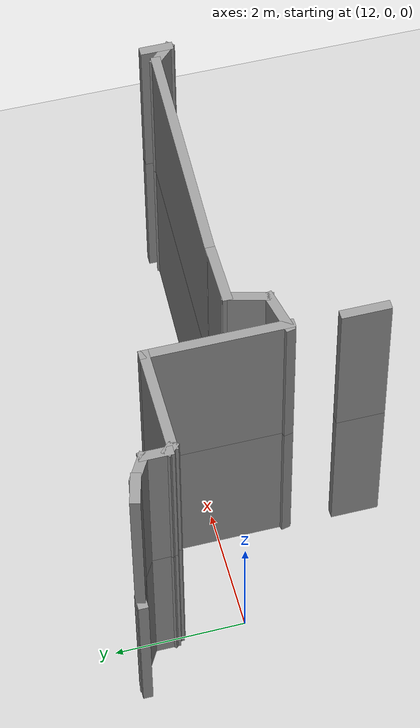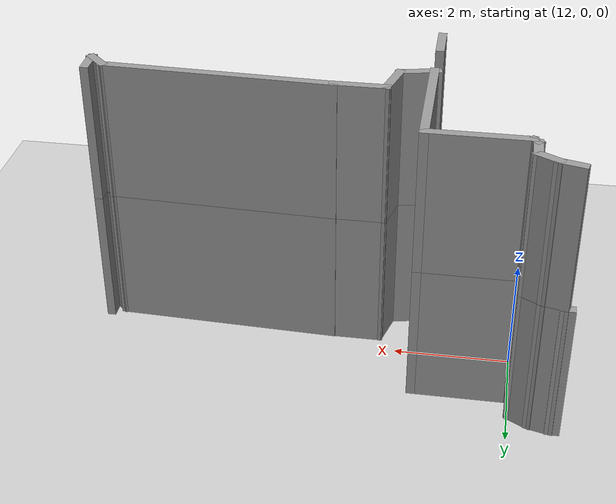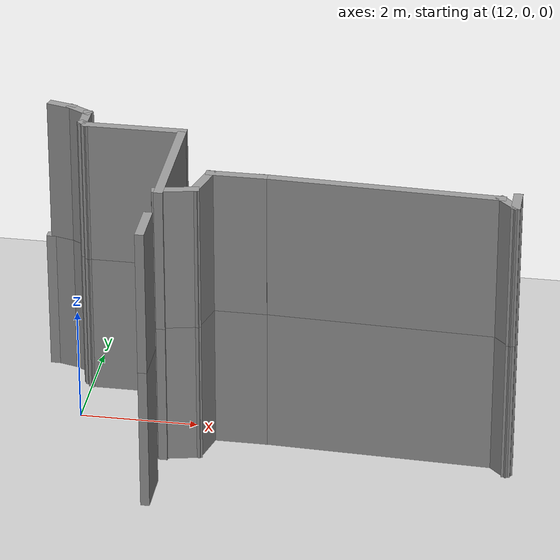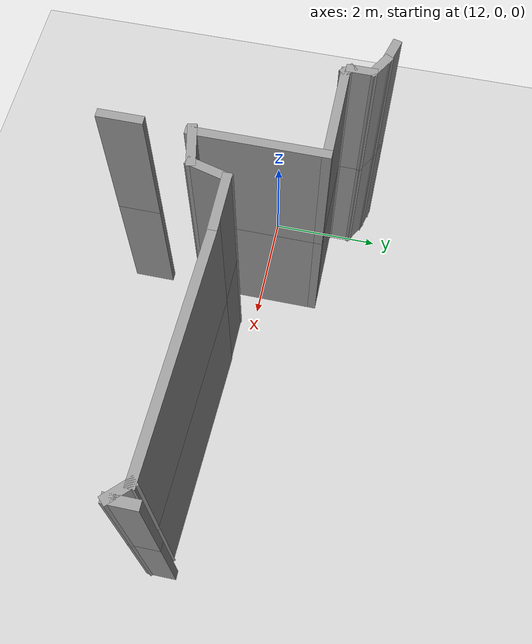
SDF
<sdf version="1.7">
 <world name="default">
  <model name="ground_plane">
   <static>1</static>
   <link name="link">
    <collision name="collision">
     <geometry><plane><normal>0 0 1</normal><size>100 100</size></plane></geometry>
     <surface>
      <contact><collide_bitmask>65535</collide_bitmask></contact>
      <friction><ode><mu>100</mu><mu2>50</mu2></ode></friction>
     </surface>
    </collision>
    <visual name="visual">
     <cast_shadows>0</cast_shadows>
     <geometry><plane><normal>0 0 1</normal><size>100 100</size></plane></geometry>
     <material>
      <script><uri>file://media/materials/scripts/gazebo.material</uri><name>Gazebo/Grey</name></script>
     </material>
    </visual>
   </link>
  </model>
  <model name="EnvDC01">
   <link name="Wall_142">
    <pose>7.0376 4.07108 0 0 0 -1.5708</pose>
    <visual name="Wall_142_Visual">
     <pose>0 0 1.25 0 -0 0</pose>
     <geometry><box><size>0.75 0.15 2.5</size></box></geometry>
     <material>
      <script><uri>file://media/materials/scripts/gazebo.material</uri><name>Gazebo/Grey</name></script>
      <ambient>1 1 1 1</ambient>
      <shader type="pixel"/>
     </material>
     <meta><layer>0</layer></meta>
    </visual>
    <collision name="Wall_142_Collision">
     <pose>0 0 1.25 0 -0 0</pose>
     <geometry><box><size>0.75 0.15 2.5</size></box></geometry>
     <surface>
      <friction>
       <ode><mu>1</mu><mu2>1</mu2><fdir1>0 0 0</fdir1><slip1>0</slip1><slip2>0</slip2></ode>
       <torsional>
        <coefficient>1</coefficient>
        <patch_radius>0</patch_radius>
        <surface_radius>0</surface_radius>
        <use_patch_radius>1</use_patch_radius>
        <ode><slip>0</slip></ode>
       </torsional>
      </friction>
      <bounce><restitution_coefficient>0</restitution_coefficient><threshold>1e+06</threshold></bounce>
      <contact>
       <collide_without_contact>0</collide_without_contact>
       <collide_without_contact_bitmask>1</collide_without_contact_bitmask>
       <collide_bitmask>1</collide_bitmask>
       <ode>
        <soft_cfm>0</soft_cfm>
        <soft_erp>0.2</soft_erp>
        <kp>1e+13</kp>
        <kd>1</kd>
        <max_vel>0.01</max_vel>
        <min_depth>0</min_depth>
       </ode>
       <bullet>
        <split_impulse>1</split_impulse>
        <split_impulse_penetration_threshold>-0.01</split_impulse_penetration_threshold>
        <soft_cfm>0</soft_cfm>
        <soft_erp>0.2</soft_erp>
        <kp>1e+13</kp>
        <kd>1</kd>
       </bullet>
      </contact>
     </surface>
    </collision>
   </link>
   <link name="Wall_274">
    <pose>12.7164 5.69748 2.5 0 0 -1.5708</pose>
    <visual name="Wall_274_Visual">
     <pose>0 0 1.25 0 -0 0</pose>
     <geometry><box><size>0.519297 0.15 2.5</size></box></geometry>
     <material>
      <script><uri>file://media/materials/scripts/gazebo.material</uri><name>Gazebo/Grey</name></script>
      <ambient>1 1 1 1</ambient>
      <shader type="pixel"/>
     </material>
     <meta><layer>1</layer></meta>
    </visual>
    <collision name="Wall_274_Collision">
     <pose>0 0 1.25 0 -0 0</pose>
     <geometry><box><size>0.519297 0.15 2.5</size></box></geometry>
     <surface>
      <friction>
       <ode><mu>1</mu><mu2>1</mu2><fdir1>0 0 0</fdir1><slip1>0</slip1><slip2>0</slip2></ode>
       <torsional>
        <coefficient>1</coefficient>
        <patch_radius>0</patch_radius>
        <surface_radius>0</surface_radius>
        <use_patch_radius>1</use_patch_radius>
        <ode><slip>0</slip></ode>
       </torsional>
      </friction>
      <bounce><restitution_coefficient>0</restitution_coefficient><threshold>1e+06</threshold></bounce>
      <contact>
       <collide_without_contact>0</collide_without_contact>
       <collide_without_contact_bitmask>1</collide_without_contact_bitmask>
       <collide_bitmask>1</collide_bitmask>
       <ode>
        <soft_cfm>0</soft_cfm>
        <soft_erp>0.2</soft_erp>
        <kp>1e+13</kp>
        <kd>1</kd>
        <max_vel>0.01</max_vel>
        <min_depth>0</min_depth>
       </ode>
       <bullet>
        <split_impulse>1</split_impulse>
        <split_impulse_penetration_threshold>-0.01</split_impulse_penetration_threshold>
        <soft_cfm>0</soft_cfm>
        <soft_erp>0.2</soft_erp>
        <kp>1e+13</kp>
        <kd>1</kd>
       </bullet>
      </contact>
     </surface>
    </collision>
   </link>
   <link name="Wall_275">
    <pose>12.5926 5.63658 2.5 0 -0 2.35619</pose>
    <visual name="Wall_275_Visual">
     <pose>0 0 1.25 0 -0 0</pose>
     <geometry><box><size>0.5 0.15 2.5</size></box></geometry>
     <material>
      <script><uri>file://media/materials/scripts/gazebo.material</uri><name>Gazebo/Grey</name></script>
      <ambient>1 1 1 1</ambient>
      <shader type="pixel"/>
     </material>
     <meta><layer>1</layer></meta>
    </visual>
    <collision name="Wall_275_Collision">
     <pose>0 0 1.25 0 -0 0</pose>
     <geometry><box><size>0.5 0.15 2.5</size></box></geometry>
     <surface>
      <friction>
       <ode><mu>1</mu><mu2>1</mu2><fdir1>0 0 0</fdir1><slip1>0</slip1><slip2>0</slip2></ode>
       <torsional>
        <coefficient>1</coefficient>
        <patch_radius>0</patch_radius>
        <surface_radius>0</surface_radius>
        <use_patch_radius>1</use_patch_radius>
        <ode><slip>0</slip></ode>
       </torsional>
      </friction>
      <bounce><restitution_coefficient>0</restitution_coefficient><threshold>1e+06</threshold></bounce>
      <contact>
       <collide_without_contact>0</collide_without_contact>
       <collide_without_contact_bitmask>1</collide_without_contact_bitmask>
       <collide_bitmask>1</collide_bitmask>
       <ode>
        <soft_cfm>0</soft_cfm>
        <soft_erp>0.2</soft_erp>
        <kp>1e+13</kp>
        <kd>1</kd>
        <max_vel>0.01</max_vel>
        <min_depth>0</min_depth>
       </ode>
       <bullet>
        <split_impulse>1</split_impulse>
        <split_impulse_penetration_threshold>-0.01</split_impulse_penetration_threshold>
        <soft_cfm>0</soft_cfm>
        <soft_erp>0.2</soft_erp>
        <kp>1e+13</kp>
        <kd>1</kd>
       </bullet>
      </contact>
     </surface>
    </collision>
   </link>
   <link name="Wall_276">
    <pose>10.547 5.83328 2.5 0 -0 3.10365</pose>
    <visual name="Wall_276_Visual">
     <pose>0 0 1.25 0 -0 0</pose>
     <geometry><box><size>3.99642 0.15 2.5</size></box></geometry>
     <material>
      <script><uri>file://media/materials/scripts/gazebo.material</uri><name>Gazebo/Grey</name></script>
      <ambient>1 1 1 1</ambient>
      <shader type="pixel"/>
     </material>
     <meta><layer>1</layer></meta>
    </visual>
    <collision name="Wall_276_Collision">
     <pose>0 0 1.25 0 -0 0</pose>
     <geometry><box><size>3.99642 0.15 2.5</size></box></geometry>
     <surface>
      <friction>
       <ode><mu>1</mu><mu2>1</mu2><fdir1>0 0 0</fdir1><slip1>0</slip1><slip2>0</slip2></ode>
       <torsional>
        <coefficient>1</coefficient>
        <patch_radius>0</patch_radius>
        <surface_radius>0</surface_radius>
        <use_patch_radius>1</use_patch_radius>
        <ode><slip>0</slip></ode>
       </torsional>
      </friction>
      <bounce><restitution_coefficient>0</restitution_coefficient><threshold>1e+06</threshold></bounce>
      <contact>
       <collide_without_contact>0</collide_without_contact>
       <collide_without_contact_bitmask>1</collide_without_contact_bitmask>
       <collide_bitmask>1</collide_bitmask>
       <ode>
        <soft_cfm>0</soft_cfm>
        <soft_erp>0.2</soft_erp>
        <kp>1e+13</kp>
        <kd>1</kd>
        <max_vel>0.01</max_vel>
        <min_depth>0</min_depth>
       </ode>
       <bullet>
        <split_impulse>1</split_impulse>
        <split_impulse_penetration_threshold>-0.01</split_impulse_penetration_threshold>
        <soft_cfm>0</soft_cfm>
        <soft_erp>0.2</soft_erp>
        <kp>1e+13</kp>
        <kd>1</kd>
       </bullet>
      </contact>
     </surface>
    </collision>
   </link>
   <link name="Wall_277">
    <pose>8.20021 5.89989 2.5 0 -0 3.14159</pose>
    <visual name="Wall_277_Visual">
     <pose>0 0 1.25 0 -0 0</pose>
     <geometry><box><size>1 0.15 2.5</size></box></geometry>
     <material>
      <script><uri>file://media/materials/scripts/gazebo.material</uri><name>Gazebo/Grey</name></script>
      <ambient>1 1 1 1</ambient>
      <shader type="pixel"/>
     </material>
     <meta><layer>1</layer></meta>
    </visual>
    <collision name="Wall_277_Collision">
     <pose>0 0 1.25 0 -0 0</pose>
     <geometry><box><size>1 0.15 2.5</size></box></geometry>
     <surface>
      <friction>
       <ode><mu>1</mu><mu2>1</mu2><fdir1>0 0 0</fdir1><slip1>0</slip1><slip2>0</slip2></ode>
       <torsional>
        <coefficient>1</coefficient>
        <patch_radius>0</patch_radius>
        <surface_radius>0</surface_radius>
        <use_patch_radius>1</use_patch_radius>
        <ode><slip>0</slip></ode>
       </torsional>
      </friction>
      <bounce><restitution_coefficient>0</restitution_coefficient><threshold>1e+06</threshold></bounce>
      <contact>
       <collide_without_contact>0</collide_without_contact>
       <collide_without_contact_bitmask>1</collide_without_contact_bitmask>
       <collide_bitmask>1</collide_bitmask>
       <ode>
        <soft_cfm>0</soft_cfm>
        <soft_erp>0.2</soft_erp>
        <kp>1e+13</kp>
        <kd>1</kd>
        <max_vel>0.01</max_vel>
        <min_depth>0</min_depth>
       </ode>
       <bullet>
        <split_impulse>1</split_impulse>
        <split_impulse_penetration_threshold>-0.01</split_impulse_penetration_threshold>
        <soft_cfm>0</soft_cfm>
        <soft_erp>0.2</soft_erp>
        <kp>1e+13</kp>
        <kd>1</kd>
       </bullet>
      </contact>
     </surface>
    </collision>
   </link>
   <link name="Wall_278">
    <pose>7.69756 5.61011 2.5 0 0 -1.8326</pose>
    <visual name="Wall_278_Visual">
     <pose>0 0 1.25 0 -0 0</pose>
     <geometry><box><size>0.75 0.15 2.5</size></box></geometry>
     <material>
      <script><uri>file://media/materials/scripts/gazebo.material</uri><name>Gazebo/Grey</name></script>
      <ambient>1 1 1 1</ambient>
      <shader type="pixel"/>
     </material>
     <meta><layer>1</layer></meta>
    </visual>
    <collision name="Wall_278_Collision">
     <pose>0 0 1.25 0 -0 0</pose>
     <geometry><box><size>0.75 0.15 2.5</size></box></geometry>
     <surface>
      <friction>
       <ode><mu>1</mu><mu2>1</mu2><fdir1>0 0 0</fdir1><slip1>0</slip1><slip2>0</slip2></ode>
       <torsional>
        <coefficient>1</coefficient>
        <patch_radius>0</patch_radius>
        <surface_radius>0</surface_radius>
        <use_patch_radius>1</use_patch_radius>
        <ode><slip>0</slip></ode>
       </torsional>
      </friction>
      <bounce><restitution_coefficient>0</restitution_coefficient><threshold>1e+06</threshold></bounce>
      <contact>
       <collide_without_contact>0</collide_without_contact>
       <collide_without_contact_bitmask>1</collide_without_contact_bitmask>
       <collide_bitmask>1</collide_bitmask>
       <ode>
        <soft_cfm>0</soft_cfm>
        <soft_erp>0.2</soft_erp>
        <kp>1e+13</kp>
        <kd>1</kd>
        <max_vel>0.01</max_vel>
        <min_depth>0</min_depth>
       </ode>
       <bullet>
        <split_impulse>1</split_impulse>
        <split_impulse_penetration_threshold>-0.01</split_impulse_penetration_threshold>
        <soft_cfm>0</soft_cfm>
        <soft_erp>0.2</soft_erp>
        <kp>1e+13</kp>
        <kd>1</kd>
       </bullet>
      </contact>
     </surface>
    </collision>
   </link>
   <link name="Wall_279">
    <pose>7.32083 5.25778 2.5 0 0 -2.93542</pose>
    <visual name="Wall_279_Visual">
     <pose>0 0 1.25 0 -0 0</pose>
     <geometry><box><size>0.761118 0.15 2.5</size></box></geometry>
     <material>
      <script><uri>file://media/materials/scripts/gazebo.material</uri><name>Gazebo/Grey</name></script>
      <ambient>1 1 1 1</ambient>
      <shader type="pixel"/>
     </material>
     <meta><layer>1</layer></meta>
    </visual>
    <collision name="Wall_279_Collision">
     <pose>0 0 1.25 0 -0 0</pose>
     <geometry><box><size>0.761118 0.15 2.5</size></box></geometry>
     <surface>
      <friction>
       <ode><mu>1</mu><mu2>1</mu2><fdir1>0 0 0</fdir1><slip1>0</slip1><slip2>0</slip2></ode>
       <torsional>
        <coefficient>1</coefficient>
        <patch_radius>0</patch_radius>
        <surface_radius>0</surface_radius>
        <use_patch_radius>1</use_patch_radius>
        <ode><slip>0</slip></ode>
       </torsional>
      </friction>
      <bounce><restitution_coefficient>0</restitution_coefficient><threshold>1e+06</threshold></bounce>
      <contact>
       <collide_without_contact>0</collide_without_contact>
       <collide_without_contact_bitmask>1</collide_without_contact_bitmask>
       <collide_bitmask>1</collide_bitmask>
       <ode>
        <soft_cfm>0</soft_cfm>
        <soft_erp>0.2</soft_erp>
        <kp>1e+13</kp>
        <kd>1</kd>
        <max_vel>0.01</max_vel>
        <min_depth>0</min_depth>
       </ode>
       <bullet>
        <split_impulse>1</split_impulse>
        <split_impulse_penetration_threshold>-0.01</split_impulse_penetration_threshold>
        <soft_cfm>0</soft_cfm>
        <soft_erp>0.2</soft_erp>
        <kp>1e+13</kp>
        <kd>1</kd>
       </bullet>
      </contact>
     </surface>
    </collision>
   </link>
   <link name="Wall_280">
    <pose>7.07114 6.22054 2.5 0 -0 1.5708</pose>
    <visual name="Wall_280_Visual">
     <pose>0 0 1.25 0 -0 0</pose>
     <geometry><box><size>2.25 0.15 2.5</size></box></geometry>
     <material>
      <script><uri>file://media/materials/scripts/gazebo.material</uri><name>Gazebo/Grey</name></script>
      <ambient>1 1 1 1</ambient>
      <shader type="pixel"/>
     </material>
     <meta><layer>1</layer></meta>
    </visual>
    <collision name="Wall_280_Collision">
     <pose>0 0 1.25 0 -0 0</pose>
     <geometry><box><size>2.25 0.15 2.5</size></box></geometry>
     <surface>
      <friction>
       <ode><mu>1</mu><mu2>1</mu2><fdir1>0 0 0</fdir1><slip1>0</slip1><slip2>0</slip2></ode>
       <torsional>
        <coefficient>1</coefficient>
        <patch_radius>0</patch_radius>
        <surface_radius>0</surface_radius>
        <use_patch_radius>1</use_patch_radius>
        <ode><slip>0</slip></ode>
       </torsional>
      </friction>
      <bounce><restitution_coefficient>0</restitution_coefficient><threshold>1e+06</threshold></bounce>
      <contact>
       <collide_without_contact>0</collide_without_contact>
       <collide_without_contact_bitmask>1</collide_without_contact_bitmask>
       <collide_bitmask>1</collide_bitmask>
       <ode>
        <soft_cfm>0</soft_cfm>
        <soft_erp>0.2</soft_erp>
        <kp>1e+13</kp>
        <kd>1</kd>
        <max_vel>0.01</max_vel>
        <min_depth>0</min_depth>
       </ode>
       <bullet>
        <split_impulse>1</split_impulse>
        <split_impulse_penetration_threshold>-0.01</split_impulse_penetration_threshold>
        <soft_cfm>0</soft_cfm>
        <soft_erp>0.2</soft_erp>
        <kp>1e+13</kp>
        <kd>1</kd>
       </bullet>
      </contact>
     </surface>
    </collision>
   </link>
   <link name="Wall_281">
    <pose>6.27114 7.27054 2.5 0 -0 3.14159</pose>
    <visual name="Wall_281_Visual">
     <pose>0 0 1.25 0 -0 0</pose>
     <geometry><box><size>1.75 0.15 2.5</size></box></geometry>
     <material>
      <script><uri>file://media/materials/scripts/gazebo.material</uri><name>Gazebo/Grey</name></script>
      <ambient>1 1 1 1</ambient>
      <shader type="pixel"/>
     </material>
     <meta><layer>1</layer></meta>
    </visual>
    <collision name="Wall_281_Collision">
     <pose>0 0 1.25 0 -0 0</pose>
     <geometry><box><size>1.75 0.15 2.5</size></box></geometry>
     <surface>
      <friction>
       <ode><mu>1</mu><mu2>1</mu2><fdir1>0 0 0</fdir1><slip1>0</slip1><slip2>0</slip2></ode>
       <torsional>
        <coefficient>1</coefficient>
        <patch_radius>0</patch_radius>
        <surface_radius>0</surface_radius>
        <use_patch_radius>1</use_patch_radius>
        <ode><slip>0</slip></ode>
       </torsional>
      </friction>
      <bounce><restitution_coefficient>0</restitution_coefficient><threshold>1e+06</threshold></bounce>
      <contact>
       <collide_without_contact>0</collide_without_contact>
       <collide_without_contact_bitmask>1</collide_without_contact_bitmask>
       <collide_bitmask>1</collide_bitmask>
       <ode>
        <soft_cfm>0</soft_cfm>
        <soft_erp>0.2</soft_erp>
        <kp>1e+13</kp>
        <kd>1</kd>
        <max_vel>0.01</max_vel>
        <min_depth>0</min_depth>
       </ode>
       <bullet>
        <split_impulse>1</split_impulse>
        <split_impulse_penetration_threshold>-0.01</split_impulse_penetration_threshold>
        <soft_cfm>0</soft_cfm>
        <soft_erp>0.2</soft_erp>
        <kp>1e+13</kp>
        <kd>1</kd>
       </bullet>
      </contact>
     </surface>
    </collision>
   </link>
   <link name="Wall_282">
    <pose>5.43578 7.3059 2.5 0 -0 2.35619</pose>
    <visual name="Wall_282_Visual">
     <pose>0 0 1.25 0 -0 0</pose>
     <geometry><box><size>0.25 0.15 2.5</size></box></geometry>
     <material>
      <script><uri>file://media/materials/scripts/gazebo.material</uri><name>Gazebo/Grey</name></script>
      <ambient>1 1 1 1</ambient>
      <shader type="pixel"/>
     </material>
     <meta><layer>1</layer></meta>
    </visual>
    <collision name="Wall_282_Collision">
     <pose>0 0 1.25 0 -0 0</pose>
     <geometry><box><size>0.25 0.15 2.5</size></box></geometry>
     <surface>
      <friction>
       <ode><mu>1</mu><mu2>1</mu2><fdir1>0 0 0</fdir1><slip1>0</slip1><slip2>0</slip2></ode>
       <torsional>
        <coefficient>1</coefficient>
        <patch_radius>0</patch_radius>
        <surface_radius>0</surface_radius>
        <use_patch_radius>1</use_patch_radius>
        <ode><slip>0</slip></ode>
       </torsional>
      </friction>
      <bounce><restitution_coefficient>0</restitution_coefficient><threshold>1e+06</threshold></bounce>
      <contact>
       <collide_without_contact>0</collide_without_contact>
       <collide_without_contact_bitmask>1</collide_without_contact_bitmask>
       <collide_bitmask>1</collide_bitmask>
       <ode>
        <soft_cfm>0</soft_cfm>
        <soft_erp>0.2</soft_erp>
        <kp>1e+13</kp>
        <kd>1</kd>
        <max_vel>0.01</max_vel>
        <min_depth>0</min_depth>
       </ode>
       <bullet>
        <split_impulse>1</split_impulse>
        <split_impulse_penetration_threshold>-0.01</split_impulse_penetration_threshold>
        <soft_cfm>0</soft_cfm>
        <soft_erp>0.2</soft_erp>
        <kp>1e+13</kp>
        <kd>1</kd>
       </bullet>
      </contact>
     </surface>
    </collision>
   </link>
   <link name="Wall_283">
    <pose>5.40043 7.51625 2.5 0 -0 1.5708</pose>
    <visual name="Wall_283_Visual">
     <pose>0 0 1.25 0 -0 0</pose>
     <geometry><box><size>0.5 0.15 2.5</size></box></geometry>
     <material>
      <script><uri>file://media/materials/scripts/gazebo.material</uri><name>Gazebo/Grey</name></script>
      <ambient>1 1 1 1</ambient>
      <shader type="pixel"/>
     </material>
     <meta><layer>1</layer></meta>
    </visual>
    <collision name="Wall_283_Collision">
     <pose>0 0 1.25 0 -0 0</pose>
     <geometry><box><size>0.5 0.15 2.5</size></box></geometry>
     <surface>
      <friction>
       <ode><mu>1</mu><mu2>1</mu2><fdir1>0 0 0</fdir1><slip1>0</slip1><slip2>0</slip2></ode>
       <torsional>
        <coefficient>1</coefficient>
        <patch_radius>0</patch_radius>
        <surface_radius>0</surface_radius>
        <use_patch_radius>1</use_patch_radius>
        <ode><slip>0</slip></ode>
       </torsional>
      </friction>
      <bounce><restitution_coefficient>0</restitution_coefficient><threshold>1e+06</threshold></bounce>
      <contact>
       <collide_without_contact>0</collide_without_contact>
       <collide_without_contact_bitmask>1</collide_without_contact_bitmask>
       <collide_bitmask>1</collide_bitmask>
       <ode>
        <soft_cfm>0</soft_cfm>
        <soft_erp>0.2</soft_erp>
        <kp>1e+13</kp>
        <kd>1</kd>
        <max_vel>0.01</max_vel>
        <min_depth>0</min_depth>
       </ode>
       <bullet>
        <split_impulse>1</split_impulse>
        <split_impulse_penetration_threshold>-0.01</split_impulse_penetration_threshold>
        <soft_cfm>0</soft_cfm>
        <soft_erp>0.2</soft_erp>
        <kp>1e+13</kp>
        <kd>1</kd>
       </bullet>
      </contact>
     </surface>
    </collision>
   </link>
   <link name="Wall_284">
    <pose>5.24887 7.77875 2.5 0 -0 2.61799</pose>
    <visual name="Wall_284_Visual">
     <pose>0 0 1.25 0 -0 0</pose>
     <geometry><box><size>0.5 0.15 2.5</size></box></geometry>
     <material>
      <script><uri>file://media/materials/scripts/gazebo.material</uri><name>Gazebo/Grey</name></script>
      <ambient>1 1 1 1</ambient>
      <shader type="pixel"/>
     </material>
     <meta><layer>1</layer></meta>
    </visual>
    <collision name="Wall_284_Collision">
     <pose>0 0 1.25 0 -0 0</pose>
     <geometry><box><size>0.5 0.15 2.5</size></box></geometry>
     <surface>
      <friction>
       <ode><mu>1</mu><mu2>1</mu2><fdir1>0 0 0</fdir1><slip1>0</slip1><slip2>0</slip2></ode>
       <torsional>
        <coefficient>1</coefficient>
        <patch_radius>0</patch_radius>
        <surface_radius>0</surface_radius>
        <use_patch_radius>1</use_patch_radius>
        <ode><slip>0</slip></ode>
       </torsional>
      </friction>
      <bounce><restitution_coefficient>0</restitution_coefficient><threshold>1e+06</threshold></bounce>
      <contact>
       <collide_without_contact>0</collide_without_contact>
       <collide_without_contact_bitmask>1</collide_without_contact_bitmask>
       <collide_bitmask>1</collide_bitmask>
       <ode>
        <soft_cfm>0</soft_cfm>
        <soft_erp>0.2</soft_erp>
        <kp>1e+13</kp>
        <kd>1</kd>
        <max_vel>0.01</max_vel>
        <min_depth>0</min_depth>
       </ode>
       <bullet>
        <split_impulse>1</split_impulse>
        <split_impulse_penetration_threshold>-0.01</split_impulse_penetration_threshold>
        <soft_cfm>0</soft_cfm>
        <soft_erp>0.2</soft_erp>
        <kp>1e+13</kp>
        <kd>1</kd>
       </bullet>
      </contact>
     </surface>
    </collision>
   </link>
   <link name="Wall_285">
    <pose>4.92828 7.91155 2.5 0 -0 2.87979</pose>
    <visual name="Wall_285_Visual">
     <pose>0 0 1.25 0 -0 0</pose>
     <geometry><box><size>0.5 0.15 2.5</size></box></geometry>
     <material>
      <script><uri>file://media/materials/scripts/gazebo.material</uri><name>Gazebo/Grey</name></script>
      <ambient>1 1 1 1</ambient>
      <shader type="pixel"/>
     </material>
     <meta><layer>1</layer></meta>
    </visual>
    <collision name="Wall_285_Collision">
     <pose>0 0 1.25 0 -0 0</pose>
     <geometry><box><size>0.5 0.15 2.5</size></box></geometry>
     <surface>
      <friction>
       <ode><mu>1</mu><mu2>1</mu2><fdir1>0 0 0</fdir1><slip1>0</slip1><slip2>0</slip2></ode>
       <torsional>
        <coefficient>1</coefficient>
        <patch_radius>0</patch_radius>
        <surface_radius>0</surface_radius>
        <use_patch_radius>1</use_patch_radius>
        <ode><slip>0</slip></ode>
       </torsional>
      </friction>
      <bounce><restitution_coefficient>0</restitution_coefficient><threshold>1e+06</threshold></bounce>
      <contact>
       <collide_without_contact>0</collide_without_contact>
       <collide_without_contact_bitmask>1</collide_without_contact_bitmask>
       <collide_bitmask>1</collide_bitmask>
       <ode>
        <soft_cfm>0</soft_cfm>
        <soft_erp>0.2</soft_erp>
        <kp>1e+13</kp>
        <kd>1</kd>
        <max_vel>0.01</max_vel>
        <min_depth>0</min_depth>
       </ode>
       <bullet>
        <split_impulse>1</split_impulse>
        <split_impulse_penetration_threshold>-0.01</split_impulse_penetration_threshold>
        <soft_cfm>0</soft_cfm>
        <soft_erp>0.2</soft_erp>
        <kp>1e+13</kp>
        <kd>1</kd>
       </bullet>
      </contact>
     </surface>
    </collision>
   </link>
   <link name="Wall_332">
    <pose>7.0376 4.07108 2.5 0 0 -1.5708</pose>
    <visual name="Wall_332_Visual">
     <pose>0 0 1.25 0 -0 0</pose>
     <geometry><box><size>0.75 0.15 2.5</size></box></geometry>
     <material>
      <script><uri>file://media/materials/scripts/gazebo.material</uri><name>Gazebo/Grey</name></script>
      <ambient>1 1 1 1</ambient>
      <shader type="pixel"/>
     </material>
     <meta><layer>1</layer></meta>
    </visual>
    <collision name="Wall_332_Collision">
     <pose>0 0 1.25 0 -0 0</pose>
     <geometry><box><size>0.75 0.15 2.5</size></box></geometry>
     <surface>
      <friction>
       <ode><mu>1</mu><mu2>1</mu2><fdir1>0 0 0</fdir1><slip1>0</slip1><slip2>0</slip2></ode>
       <torsional>
        <coefficient>1</coefficient>
        <patch_radius>0</patch_radius>
        <surface_radius>0</surface_radius>
        <use_patch_radius>1</use_patch_radius>
        <ode><slip>0</slip></ode>
       </torsional>
      </friction>
      <bounce><restitution_coefficient>0</restitution_coefficient><threshold>1e+06</threshold></bounce>
      <contact>
       <collide_without_contact>0</collide_without_contact>
       <collide_without_contact_bitmask>1</collide_without_contact_bitmask>
       <collide_bitmask>1</collide_bitmask>
       <ode>
        <soft_cfm>0</soft_cfm>
        <soft_erp>0.2</soft_erp>
        <kp>1e+13</kp>
        <kd>1</kd>
        <max_vel>0.01</max_vel>
        <min_depth>0</min_depth>
       </ode>
       <bullet>
        <split_impulse>1</split_impulse>
        <split_impulse_penetration_threshold>-0.01</split_impulse_penetration_threshold>
        <soft_cfm>0</soft_cfm>
        <soft_erp>0.2</soft_erp>
        <kp>1e+13</kp>
        <kd>1</kd>
       </bullet>
      </contact>
     </surface>
    </collision>
   </link>
   <link name="Wall_57">
    <pose>12.7164 5.69748 0 0 0 -1.5708</pose>
    <visual name="Wall_57_Visual">
     <pose>0 0 1.25 0 -0 0</pose>
     <geometry><box><size>0.519297 0.15 2.5</size></box></geometry>
     <material>
      <script><uri>file://media/materials/scripts/gazebo.material</uri><name>Gazebo/Grey</name></script>
      <ambient>1 1 1 1</ambient>
      <shader type="pixel"/>
     </material>
     <meta><layer>0</layer></meta>
    </visual>
    <collision name="Wall_57_Collision">
     <pose>0 0 1.25 0 -0 0</pose>
     <geometry><box><size>0.519297 0.15 2.5</size></box></geometry>
     <surface>
      <friction>
       <ode><mu>1</mu><mu2>1</mu2><fdir1>0 0 0</fdir1><slip1>0</slip1><slip2>0</slip2></ode>
       <torsional>
        <coefficient>1</coefficient>
        <patch_radius>0</patch_radius>
        <surface_radius>0</surface_radius>
        <use_patch_radius>1</use_patch_radius>
        <ode><slip>0</slip></ode>
       </torsional>
      </friction>
      <bounce><restitution_coefficient>0</restitution_coefficient><threshold>1e+06</threshold></bounce>
      <contact>
       <collide_without_contact>0</collide_without_contact>
       <collide_without_contact_bitmask>1</collide_without_contact_bitmask>
       <collide_bitmask>1</collide_bitmask>
       <ode>
        <soft_cfm>0</soft_cfm>
        <soft_erp>0.2</soft_erp>
        <kp>1e+13</kp>
        <kd>1</kd>
        <max_vel>0.01</max_vel>
        <min_depth>0</min_depth>
       </ode>
       <bullet>
        <split_impulse>1</split_impulse>
        <split_impulse_penetration_threshold>-0.01</split_impulse_penetration_threshold>
        <soft_cfm>0</soft_cfm>
        <soft_erp>0.2</soft_erp>
        <kp>1e+13</kp>
        <kd>1</kd>
       </bullet>
      </contact>
     </surface>
    </collision>
   </link>
   <link name="Wall_59">
    <pose>12.5926 5.63658 0 0 -0 2.35619</pose>
    <visual name="Wall_59_Visual">
     <pose>0 0 1.25 0 -0 0</pose>
     <geometry><box><size>0.5 0.15 2.5</size></box></geometry>
     <material>
      <script><uri>file://media/materials/scripts/gazebo.material</uri><name>Gazebo/Grey</name></script>
      <ambient>1 1 1 1</ambient>
      <shader type="pixel"/>
     </material>
     <meta><layer>0</layer></meta>
    </visual>
    <collision name="Wall_59_Collision">
     <pose>0 0 1.25 0 -0 0</pose>
     <geometry><box><size>0.5 0.15 2.5</size></box></geometry>
     <surface>
      <friction>
       <ode><mu>1</mu><mu2>1</mu2><fdir1>0 0 0</fdir1><slip1>0</slip1><slip2>0</slip2></ode>
       <torsional>
        <coefficient>1</coefficient>
        <patch_radius>0</patch_radius>
        <surface_radius>0</surface_radius>
        <use_patch_radius>1</use_patch_radius>
        <ode><slip>0</slip></ode>
       </torsional>
      </friction>
      <bounce><restitution_coefficient>0</restitution_coefficient><threshold>1e+06</threshold></bounce>
      <contact>
       <collide_without_contact>0</collide_without_contact>
       <collide_without_contact_bitmask>1</collide_without_contact_bitmask>
       <collide_bitmask>1</collide_bitmask>
       <ode>
        <soft_cfm>0</soft_cfm>
        <soft_erp>0.2</soft_erp>
        <kp>1e+13</kp>
        <kd>1</kd>
        <max_vel>0.01</max_vel>
        <min_depth>0</min_depth>
       </ode>
       <bullet>
        <split_impulse>1</split_impulse>
        <split_impulse_penetration_threshold>-0.01</split_impulse_penetration_threshold>
        <soft_cfm>0</soft_cfm>
        <soft_erp>0.2</soft_erp>
        <kp>1e+13</kp>
        <kd>1</kd>
       </bullet>
      </contact>
     </surface>
    </collision>
   </link>
   <link name="Wall_60">
    <pose>10.547 5.83328 0 0 -0 3.10365</pose>
    <visual name="Wall_60_Visual">
     <pose>0 0 1.25 0 -0 0</pose>
     <geometry><box><size>3.99642 0.15 2.5</size></box></geometry>
     <material>
      <script><uri>file://media/materials/scripts/gazebo.material</uri><name>Gazebo/Grey</name></script>
      <ambient>1 1 1 1</ambient>
      <shader type="pixel"/>
     </material>
     <meta><layer>0</layer></meta>
    </visual>
    <collision name="Wall_60_Collision">
     <pose>0 0 1.25 0 -0 0</pose>
     <geometry><box><size>3.99642 0.15 2.5</size></box></geometry>
     <surface>
      <friction>
       <ode><mu>1</mu><mu2>1</mu2><fdir1>0 0 0</fdir1><slip1>0</slip1><slip2>0</slip2></ode>
       <torsional>
        <coefficient>1</coefficient>
        <patch_radius>0</patch_radius>
        <surface_radius>0</surface_radius>
        <use_patch_radius>1</use_patch_radius>
        <ode><slip>0</slip></ode>
       </torsional>
      </friction>
      <bounce><restitution_coefficient>0</restitution_coefficient><threshold>1e+06</threshold></bounce>
      <contact>
       <collide_without_contact>0</collide_without_contact>
       <collide_without_contact_bitmask>1</collide_without_contact_bitmask>
       <collide_bitmask>1</collide_bitmask>
       <ode>
        <soft_cfm>0</soft_cfm>
        <soft_erp>0.2</soft_erp>
        <kp>1e+13</kp>
        <kd>1</kd>
        <max_vel>0.01</max_vel>
        <min_depth>0</min_depth>
       </ode>
       <bullet>
        <split_impulse>1</split_impulse>
        <split_impulse_penetration_threshold>-0.01</split_impulse_penetration_threshold>
        <soft_cfm>0</soft_cfm>
        <soft_erp>0.2</soft_erp>
        <kp>1e+13</kp>
        <kd>1</kd>
       </bullet>
      </contact>
     </surface>
    </collision>
   </link>
   <link name="Wall_61">
    <pose>8.20021 5.89989 0 0 -0 3.14159</pose>
    <visual name="Wall_61_Visual">
     <pose>0 0 1.25 0 -0 0</pose>
     <geometry><box><size>1 0.15 2.5</size></box></geometry>
     <material>
      <script><uri>file://media/materials/scripts/gazebo.material</uri><name>Gazebo/Grey</name></script>
      <ambient>1 1 1 1</ambient>
      <shader type="pixel"/>
     </material>
     <meta><layer>0</layer></meta>
    </visual>
    <collision name="Wall_61_Collision">
     <pose>0 0 1.25 0 -0 0</pose>
     <geometry><box><size>1 0.15 2.5</size></box></geometry>
     <surface>
      <friction>
       <ode><mu>1</mu><mu2>1</mu2><fdir1>0 0 0</fdir1><slip1>0</slip1><slip2>0</slip2></ode>
       <torsional>
        <coefficient>1</coefficient>
        <patch_radius>0</patch_radius>
        <surface_radius>0</surface_radius>
        <use_patch_radius>1</use_patch_radius>
        <ode><slip>0</slip></ode>
       </torsional>
      </friction>
      <bounce><restitution_coefficient>0</restitution_coefficient><threshold>1e+06</threshold></bounce>
      <contact>
       <collide_without_contact>0</collide_without_contact>
       <collide_without_contact_bitmask>1</collide_without_contact_bitmask>
       <collide_bitmask>1</collide_bitmask>
       <ode>
        <soft_cfm>0</soft_cfm>
        <soft_erp>0.2</soft_erp>
        <kp>1e+13</kp>
        <kd>1</kd>
        <max_vel>0.01</max_vel>
        <min_depth>0</min_depth>
       </ode>
       <bullet>
        <split_impulse>1</split_impulse>
        <split_impulse_penetration_threshold>-0.01</split_impulse_penetration_threshold>
        <soft_cfm>0</soft_cfm>
        <soft_erp>0.2</soft_erp>
        <kp>1e+13</kp>
        <kd>1</kd>
       </bullet>
      </contact>
     </surface>
    </collision>
   </link>
   <link name="Wall_63">
    <pose>7.69756 5.61011 0 0 0 -1.8326</pose>
    <visual name="Wall_63_Visual">
     <pose>0 0 1.25 0 -0 0</pose>
     <geometry><box><size>0.75 0.15 2.5</size></box></geometry>
     <material>
      <script><uri>file://media/materials/scripts/gazebo.material</uri><name>Gazebo/Grey</name></script>
      <ambient>1 1 1 1</ambient>
      <shader type="pixel"/>
     </material>
     <meta><layer>0</layer></meta>
    </visual>
    <collision name="Wall_63_Collision">
     <pose>0 0 1.25 0 -0 0</pose>
     <geometry><box><size>0.75 0.15 2.5</size></box></geometry>
     <surface>
      <friction>
       <ode><mu>1</mu><mu2>1</mu2><fdir1>0 0 0</fdir1><slip1>0</slip1><slip2>0</slip2></ode>
       <torsional>
        <coefficient>1</coefficient>
        <patch_radius>0</patch_radius>
        <surface_radius>0</surface_radius>
        <use_patch_radius>1</use_patch_radius>
        <ode><slip>0</slip></ode>
       </torsional>
      </friction>
      <bounce><restitution_coefficient>0</restitution_coefficient><threshold>1e+06</threshold></bounce>
      <contact>
       <collide_without_contact>0</collide_without_contact>
       <collide_without_contact_bitmask>1</collide_without_contact_bitmask>
       <collide_bitmask>1</collide_bitmask>
       <ode>
        <soft_cfm>0</soft_cfm>
        <soft_erp>0.2</soft_erp>
        <kp>1e+13</kp>
        <kd>1</kd>
        <max_vel>0.01</max_vel>
        <min_depth>0</min_depth>
       </ode>
       <bullet>
        <split_impulse>1</split_impulse>
        <split_impulse_penetration_threshold>-0.01</split_impulse_penetration_threshold>
        <soft_cfm>0</soft_cfm>
        <soft_erp>0.2</soft_erp>
        <kp>1e+13</kp>
        <kd>1</kd>
       </bullet>
      </contact>
     </surface>
    </collision>
   </link>
   <link name="Wall_64">
    <pose>7.32083 5.25778 0 0 0 -2.93542</pose>
    <visual name="Wall_64_Visual">
     <pose>0 0 1.25 0 -0 0</pose>
     <geometry><box><size>0.761118 0.15 2.5</size></box></geometry>
     <material>
      <script><uri>file://media/materials/scripts/gazebo.material</uri><name>Gazebo/Grey</name></script>
      <ambient>1 1 1 1</ambient>
      <shader type="pixel"/>
     </material>
     <meta><layer>0</layer></meta>
    </visual>
    <collision name="Wall_64_Collision">
     <pose>0 0 1.25 0 -0 0</pose>
     <geometry><box><size>0.761118 0.15 2.5</size></box></geometry>
     <surface>
      <friction>
       <ode><mu>1</mu><mu2>1</mu2><fdir1>0 0 0</fdir1><slip1>0</slip1><slip2>0</slip2></ode>
       <torsional>
        <coefficient>1</coefficient>
        <patch_radius>0</patch_radius>
        <surface_radius>0</surface_radius>
        <use_patch_radius>1</use_patch_radius>
        <ode><slip>0</slip></ode>
       </torsional>
      </friction>
      <bounce><restitution_coefficient>0</restitution_coefficient><threshold>1e+06</threshold></bounce>
      <contact>
       <collide_without_contact>0</collide_without_contact>
       <collide_without_contact_bitmask>1</collide_without_contact_bitmask>
       <collide_bitmask>1</collide_bitmask>
       <ode>
        <soft_cfm>0</soft_cfm>
        <soft_erp>0.2</soft_erp>
        <kp>1e+13</kp>
        <kd>1</kd>
        <max_vel>0.01</max_vel>
        <min_depth>0</min_depth>
       </ode>
       <bullet>
        <split_impulse>1</split_impulse>
        <split_impulse_penetration_threshold>-0.01</split_impulse_penetration_threshold>
        <soft_cfm>0</soft_cfm>
        <soft_erp>0.2</soft_erp>
        <kp>1e+13</kp>
        <kd>1</kd>
       </bullet>
      </contact>
     </surface>
    </collision>
   </link>
   <link name="Wall_67">
    <pose>7.07114 6.22054 0 0 -0 1.5708</pose>
    <visual name="Wall_67_Visual">
     <pose>0 0 1.25 0 -0 0</pose>
     <geometry><box><size>2.25 0.15 2.5</size></box></geometry>
     <material>
      <script><uri>file://media/materials/scripts/gazebo.material</uri><name>Gazebo/Grey</name></script>
      <ambient>1 1 1 1</ambient>
      <shader type="pixel"/>
     </material>
     <meta><layer>0</layer></meta>
    </visual>
    <collision name="Wall_67_Collision">
     <pose>0 0 1.25 0 -0 0</pose>
     <geometry><box><size>2.25 0.15 2.5</size></box></geometry>
     <surface>
      <friction>
       <ode><mu>1</mu><mu2>1</mu2><fdir1>0 0 0</fdir1><slip1>0</slip1><slip2>0</slip2></ode>
       <torsional>
        <coefficient>1</coefficient>
        <patch_radius>0</patch_radius>
        <surface_radius>0</surface_radius>
        <use_patch_radius>1</use_patch_radius>
        <ode><slip>0</slip></ode>
       </torsional>
      </friction>
      <bounce><restitution_coefficient>0</restitution_coefficient><threshold>1e+06</threshold></bounce>
      <contact>
       <collide_without_contact>0</collide_without_contact>
       <collide_without_contact_bitmask>1</collide_without_contact_bitmask>
       <collide_bitmask>1</collide_bitmask>
       <ode>
        <soft_cfm>0</soft_cfm>
        <soft_erp>0.2</soft_erp>
        <kp>1e+13</kp>
        <kd>1</kd>
        <max_vel>0.01</max_vel>
        <min_depth>0</min_depth>
       </ode>
       <bullet>
        <split_impulse>1</split_impulse>
        <split_impulse_penetration_threshold>-0.01</split_impulse_penetration_threshold>
        <soft_cfm>0</soft_cfm>
        <soft_erp>0.2</soft_erp>
        <kp>1e+13</kp>
        <kd>1</kd>
       </bullet>
      </contact>
     </surface>
    </collision>
   </link>
   <link name="Wall_69">
    <pose>6.27114 7.27054 0 0 -0 3.14159</pose>
    <visual name="Wall_69_Visual">
     <pose>0 0 1.25 0 -0 0</pose>
     <geometry><box><size>1.75 0.15 2.5</size></box></geometry>
     <material>
      <script><uri>file://media/materials/scripts/gazebo.material</uri><name>Gazebo/Grey</name></script>
      <ambient>1 1 1 1</ambient>
      <shader type="pixel"/>
     </material>
     <meta><layer>0</layer></meta>
    </visual>
    <collision name="Wall_69_Collision">
     <pose>0 0 1.25 0 -0 0</pose>
     <geometry><box><size>1.75 0.15 2.5</size></box></geometry>
     <surface>
      <friction>
       <ode><mu>1</mu><mu2>1</mu2><fdir1>0 0 0</fdir1><slip1>0</slip1><slip2>0</slip2></ode>
       <torsional>
        <coefficient>1</coefficient>
        <patch_radius>0</patch_radius>
        <surface_radius>0</surface_radius>
        <use_patch_radius>1</use_patch_radius>
        <ode><slip>0</slip></ode>
       </torsional>
      </friction>
      <bounce><restitution_coefficient>0</restitution_coefficient><threshold>1e+06</threshold></bounce>
      <contact>
       <collide_without_contact>0</collide_without_contact>
       <collide_without_contact_bitmask>1</collide_without_contact_bitmask>
       <collide_bitmask>1</collide_bitmask>
       <ode>
        <soft_cfm>0</soft_cfm>
        <soft_erp>0.2</soft_erp>
        <kp>1e+13</kp>
        <kd>1</kd>
        <max_vel>0.01</max_vel>
        <min_depth>0</min_depth>
       </ode>
       <bullet>
        <split_impulse>1</split_impulse>
        <split_impulse_penetration_threshold>-0.01</split_impulse_penetration_threshold>
        <soft_cfm>0</soft_cfm>
        <soft_erp>0.2</soft_erp>
        <kp>1e+13</kp>
        <kd>1</kd>
       </bullet>
      </contact>
     </surface>
    </collision>
   </link>
   <link name="Wall_70">
    <pose>5.43578 7.3059 0 0 -0 2.35619</pose>
    <visual name="Wall_70_Visual">
     <pose>0 0 1.25 0 -0 0</pose>
     <geometry><box><size>0.25 0.15 2.5</size></box></geometry>
     <material>
      <script><uri>file://media/materials/scripts/gazebo.material</uri><name>Gazebo/Grey</name></script>
      <ambient>1 1 1 1</ambient>
      <shader type="pixel"/>
     </material>
     <meta><layer>0</layer></meta>
    </visual>
    <collision name="Wall_70_Collision">
     <pose>0 0 1.25 0 -0 0</pose>
     <geometry><box><size>0.25 0.15 2.5</size></box></geometry>
     <surface>
      <friction>
       <ode><mu>1</mu><mu2>1</mu2><fdir1>0 0 0</fdir1><slip1>0</slip1><slip2>0</slip2></ode>
       <torsional>
        <coefficient>1</coefficient>
        <patch_radius>0</patch_radius>
        <surface_radius>0</surface_radius>
        <use_patch_radius>1</use_patch_radius>
        <ode><slip>0</slip></ode>
       </torsional>
      </friction>
      <bounce><restitution_coefficient>0</restitution_coefficient><threshold>1e+06</threshold></bounce>
      <contact>
       <collide_without_contact>0</collide_without_contact>
       <collide_without_contact_bitmask>1</collide_without_contact_bitmask>
       <collide_bitmask>1</collide_bitmask>
       <ode>
        <soft_cfm>0</soft_cfm>
        <soft_erp>0.2</soft_erp>
        <kp>1e+13</kp>
        <kd>1</kd>
        <max_vel>0.01</max_vel>
        <min_depth>0</min_depth>
       </ode>
       <bullet>
        <split_impulse>1</split_impulse>
        <split_impulse_penetration_threshold>-0.01</split_impulse_penetration_threshold>
        <soft_cfm>0</soft_cfm>
        <soft_erp>0.2</soft_erp>
        <kp>1e+13</kp>
        <kd>1</kd>
       </bullet>
      </contact>
     </surface>
    </collision>
   </link>
   <link name="Wall_71">
    <pose>5.40043 7.51625 0 0 -0 1.5708</pose>
    <visual name="Wall_71_Visual">
     <pose>0 0 1.25 0 -0 0</pose>
     <geometry><box><size>0.5 0.15 2.5</size></box></geometry>
     <material>
      <script><uri>file://media/materials/scripts/gazebo.material</uri><name>Gazebo/Grey</name></script>
      <ambient>1 1 1 1</ambient>
      <shader type="pixel"/>
     </material>
     <meta><layer>0</layer></meta>
    </visual>
    <collision name="Wall_71_Collision">
     <pose>0 0 1.25 0 -0 0</pose>
     <geometry><box><size>0.5 0.15 2.5</size></box></geometry>
     <surface>
      <friction>
       <ode><mu>1</mu><mu2>1</mu2><fdir1>0 0 0</fdir1><slip1>0</slip1><slip2>0</slip2></ode>
       <torsional>
        <coefficient>1</coefficient>
        <patch_radius>0</patch_radius>
        <surface_radius>0</surface_radius>
        <use_patch_radius>1</use_patch_radius>
        <ode><slip>0</slip></ode>
       </torsional>
      </friction>
      <bounce><restitution_coefficient>0</restitution_coefficient><threshold>1e+06</threshold></bounce>
      <contact>
       <collide_without_contact>0</collide_without_contact>
       <collide_without_contact_bitmask>1</collide_without_contact_bitmask>
       <collide_bitmask>1</collide_bitmask>
       <ode>
        <soft_cfm>0</soft_cfm>
        <soft_erp>0.2</soft_erp>
        <kp>1e+13</kp>
        <kd>1</kd>
        <max_vel>0.01</max_vel>
        <min_depth>0</min_depth>
       </ode>
       <bullet>
        <split_impulse>1</split_impulse>
        <split_impulse_penetration_threshold>-0.01</split_impulse_penetration_threshold>
        <soft_cfm>0</soft_cfm>
        <soft_erp>0.2</soft_erp>
        <kp>1e+13</kp>
        <kd>1</kd>
       </bullet>
      </contact>
     </surface>
    </collision>
   </link>
   <link name="Wall_72">
    <pose>5.24887 7.77875 0 0 -0 2.61799</pose>
    <visual name="Wall_72_Visual">
     <pose>0 0 1.25 0 -0 0</pose>
     <geometry><box><size>0.5 0.15 2.5</size></box></geometry>
     <material>
      <script><uri>file://media/materials/scripts/gazebo.material</uri><name>Gazebo/Grey</name></script>
      <ambient>1 1 1 1</ambient>
      <shader type="pixel"/>
     </material>
     <meta><layer>0</layer></meta>
    </visual>
    <collision name="Wall_72_Collision">
     <pose>0 0 1.25 0 -0 0</pose>
     <geometry><box><size>0.5 0.15 2.5</size></box></geometry>
     <surface>
      <friction>
       <ode><mu>1</mu><mu2>1</mu2><fdir1>0 0 0</fdir1><slip1>0</slip1><slip2>0</slip2></ode>
       <torsional>
        <coefficient>1</coefficient>
        <patch_radius>0</patch_radius>
        <surface_radius>0</surface_radius>
        <use_patch_radius>1</use_patch_radius>
        <ode><slip>0</slip></ode>
       </torsional>
      </friction>
      <bounce><restitution_coefficient>0</restitution_coefficient><threshold>1e+06</threshold></bounce>
      <contact>
       <collide_without_contact>0</collide_without_contact>
       <collide_without_contact_bitmask>1</collide_without_contact_bitmask>
       <collide_bitmask>1</collide_bitmask>
       <ode>
        <soft_cfm>0</soft_cfm>
        <soft_erp>0.2</soft_erp>
        <kp>1e+13</kp>
        <kd>1</kd>
        <max_vel>0.01</max_vel>
        <min_depth>0</min_depth>
       </ode>
       <bullet>
        <split_impulse>1</split_impulse>
        <split_impulse_penetration_threshold>-0.01</split_impulse_penetration_threshold>
        <soft_cfm>0</soft_cfm>
        <soft_erp>0.2</soft_erp>
        <kp>1e+13</kp>
        <kd>1</kd>
       </bullet>
      </contact>
     </surface>
    </collision>
   </link>
   <link name="Wall_73">
    <pose>4.92828 7.91155 0 0 -0 2.87979</pose>
    <visual name="Wall_73_Visual">
     <pose>0 0 1.25 0 -0 0</pose>
     <geometry><box><size>0.5 0.15 2.5</size></box></geometry>
     <material>
      <script><uri>file://media/materials/scripts/gazebo.material</uri><name>Gazebo/Grey</name></script>
      <ambient>1 1 1 1</ambient>
      <shader type="pixel"/>
     </material>
     <meta><layer>0</layer></meta>
    </visual>
    <collision name="Wall_73_Collision">
     <pose>0 0 1.25 0 -0 0</pose>
     <geometry><box><size>0.5 0.15 2.5</size></box></geometry>
     <surface>
      <friction>
       <ode><mu>1</mu><mu2>1</mu2><fdir1>0 0 0</fdir1><slip1>0</slip1><slip2>0</slip2></ode>
       <torsional>
        <coefficient>1</coefficient>
        <patch_radius>0</patch_radius>
        <surface_radius>0</surface_radius>
        <use_patch_radius>1</use_patch_radius>
        <ode><slip>0</slip></ode>
       </torsional>
      </friction>
      <bounce><restitution_coefficient>0</restitution_coefficient><threshold>1e+06</threshold></bounce>
      <contact>
       <collide_without_contact>0</collide_without_contact>
       <collide_without_contact_bitmask>1</collide_without_contact_bitmask>
       <collide_bitmask>1</collide_bitmask>
       <ode>
        <soft_cfm>0</soft_cfm>
        <soft_erp>0.2</soft_erp>
        <kp>1e+13</kp>
        <kd>1</kd>
        <max_vel>0.01</max_vel>
        <min_depth>0</min_depth>
       </ode>
       <bullet>
        <split_impulse>1</split_impulse>
        <split_impulse_penetration_threshold>-0.01</split_impulse_penetration_threshold>
        <soft_cfm>0</soft_cfm>
        <soft_erp>0.2</soft_erp>
        <kp>1e+13</kp>
        <kd>1</kd>
       </bullet>
      </contact>
     </surface>
    </collision>
   </link>
   <link name="Wall_74">
    <pose>4.70925 7.95684 0 0 -0 3.14159</pose>
    <visual name="Wall_74_Visual">
     <pose>0 0 1.25 0 -0 0</pose>
     <geometry><box><size>0.25 0.15 2.5</size></box></geometry>
     <material>
      <script><uri>file://media/materials/scripts/gazebo.material</uri><name>Gazebo/Grey</name></script>
      <ambient>1 1 1 1</ambient>
      <shader type="pixel"/>
     </material>
     <meta><layer>0</layer></meta>
    </visual>
    <collision name="Wall_74_Collision">
     <pose>0 0 1.25 0 -0 0</pose>
     <geometry><box><size>0.25 0.15 2.5</size></box></geometry>
     <surface>
      <friction>
       <ode><mu>1</mu><mu2>1</mu2><fdir1>0 0 0</fdir1><slip1>0</slip1><slip2>0</slip2></ode>
       <torsional>
        <coefficient>1</coefficient>
        <patch_radius>0</patch_radius>
        <surface_radius>0</surface_radius>
        <use_patch_radius>1</use_patch_radius>
        <ode><slip>0</slip></ode>
       </torsional>
      </friction>
      <bounce><restitution_coefficient>0</restitution_coefficient><threshold>1e+06</threshold></bounce>
      <contact>
       <collide_without_contact>0</collide_without_contact>
       <collide_without_contact_bitmask>1</collide_without_contact_bitmask>
       <collide_bitmask>1</collide_bitmask>
       <ode>
        <soft_cfm>0</soft_cfm>
        <soft_erp>0.2</soft_erp>
        <kp>1e+13</kp>
        <kd>1</kd>
        <max_vel>0.01</max_vel>
        <min_depth>0</min_depth>
       </ode>
       <bullet>
        <split_impulse>1</split_impulse>
        <split_impulse_penetration_threshold>-0.01</split_impulse_penetration_threshold>
        <soft_cfm>0</soft_cfm>
        <soft_erp>0.2</soft_erp>
        <kp>1e+13</kp>
        <kd>1</kd>
       </bullet>
      </contact>
     </surface>
    </collision>
   </link>
   <static>1</static>
   <pose>6.55365 -6.2466 0 0 -0 0</pose>
  </model>
 </world>
</sdf>
